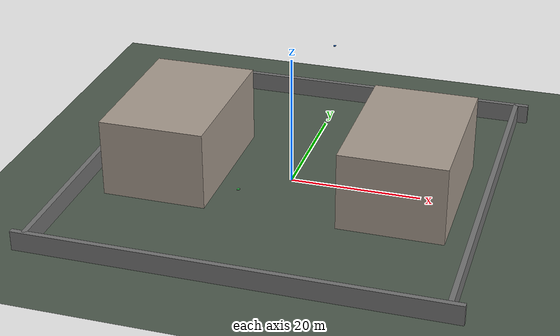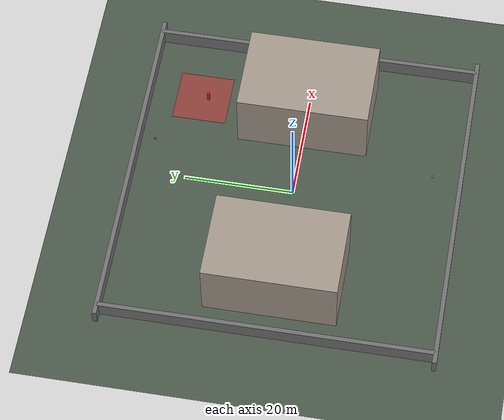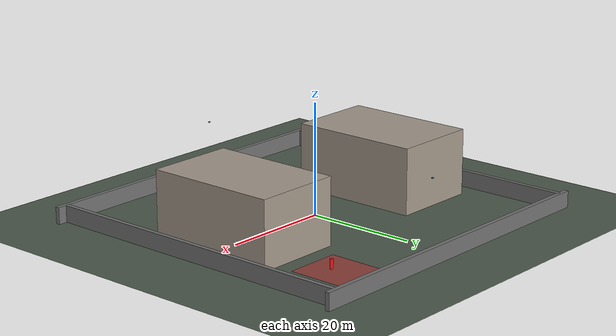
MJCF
<mujoco model="campus_perimeter_patrol">
  <compiler angle="radian" coordinate="local"/>
  <option gravity="0 0 -9.81" timestep="0.004" solver="Newton" iterations="40"/>

  <default>
    <geom condim="3" friction="1.0 0.01 0.005"/>
    <motor ctrllimited="true" ctrlrange="0 7.5"/>
  </default>

  <worldbody>
    <!-- Campus Ground Plane -->
    <geom name="ground" type="plane" size="45 45 0.1" rgba="0.3 0.35 0.3 1"/>
    <light directional="true" pos="0 0 30" dir="0 0 -1" castshadow="false"/>

    <!-- Campus Academic Buildings / Obstacles -->
    <geom name="building_east" type="box" size="8 12 6" pos="18 0 6" rgba="0.65 0.6 0.55 1"/>
    <geom name="building_west" type="box" size="8 12 6" pos="-18 0 6" rgba="0.65 0.6 0.55 1"/>

    <!-- Perimeter Boundary Walls -->
    <geom name="wall_north" type="box" size="32 0.4 1.5" pos="0 30 1.5" rgba="0.45 0.45 0.45 1"/>
    <geom name="wall_south" type="box" size="32 0.4 1.5" pos="0 -30 1.5" rgba="0.45 0.45 0.45 1"/>
    <geom name="wall_east"  type="box" size="0.4 30 1.5" pos="30 0 1.5" rgba="0.45 0.45 0.45 1"/>
    <geom name="wall_west"  type="box" size="0.4 30 1.5" pos="-30 0 1.5" rgba="0.45 0.45 0.45 1"/>

    <!-- Restricted Zone Marker (Electrical Substation) -->
    <geom name="substation_zone" type="box" size="5 5 0.02" pos="18 20 0.02" rgba="0.85 0.2 0.2 0.5"/>

    <!-- Simulated Human Intruder Avatar -->
    <body name="human_intruder" pos="18 19 0.85">
      <freejoint name="intruder_root"/>
      <geom name="intruder_geom" type="cylinder" size="0.28 0.85" rgba="0.9 0.1 0.1 1" mass="75.0"/>
      <site name="intruder_head" pos="0 0 0.85"/>
    </body>

    <!-- UAV ALPHA (Patrol Sector Alpha: North-East Perimeter)               -->
    <body name="uav_alpha" pos="0 25 12">
      <freejoint name="uav_alpha_root"/>
      <geom name="alpha_chassis" type="box" size="0.18 0.18 0.05" rgba="0.15 0.45 0.85 1" mass="1.35"/>
      <site name="alpha_imu" pos="0 0 0"/>
      <!-- Downward Surveillance Camera -->
      <camera name="cam_alpha" pos="0 0 -0.06" euler="3.1415 0 0" fovy="60"/>

      <!-- 4 Rotors for Quadrotor Dynamics -->
      <site name="alpha_rotor0" pos="0.20 0 0.02"/>
      <site name="alpha_rotor1" pos="-0.20 0 0.02"/>
      <site name="alpha_rotor2" pos="0 0.20 0.02"/>
      <site name="alpha_rotor3" pos="0 -0.20 0.02"/>
    </body>

    <!-- UAV BRAVO (Patrol Sector Bravo: South-West Perimeter)               -->
    <body name="uav_bravo" pos="0 -25 12">
      <freejoint name="uav_bravo_root"/>
      <geom name="bravo_chassis" type="box" size="0.18 0.18 0.05" rgba="0.2 0.7 0.3 1" mass="1.35"/>
      <site name="bravo_imu" pos="0 0 0"/>
      <!-- Downward Surveillance Camera -->
      <camera name="cam_bravo" pos="0 0 -0.06" euler="3.1415 0 0" fovy="60"/>

      <!-- 4 Rotors for Quadrotor Dynamics -->
      <site name="bravo_rotor0" pos="0.20 0 0.02"/>
      <site name="bravo_rotor1" pos="-0.20 0 0.02"/>
      <site name="bravo_rotor2" pos="0 0.20 0.02"/>
      <site name="bravo_rotor3" pos="0 -0.20 0.02"/>
    </body>
  </worldbody>

  <actuator>
    <!-- UAV Alpha Rotors (Thrust 0 to 7.5 N each) -->
    <motor name="alpha_m0" site="alpha_rotor0" gear="0 0 1 0 0 0"/>
    <motor name="alpha_m1" site="alpha_rotor1" gear="0 0 1 0 0 0"/>
    <motor name="alpha_m2" site="alpha_rotor2" gear="0 0 1 0 0 0"/>
    <motor name="alpha_m3" site="alpha_rotor3" gear="0 0 1 0 0 0"/>

    <!-- UAV Bravo Rotors -->
    <motor name="bravo_m0" site="bravo_rotor0" gear="0 0 1 0 0 0"/>
    <motor name="bravo_m1" site="bravo_rotor1" gear="0 0 1 0 0 0"/>
    <motor name="bravo_m2" site="bravo_rotor2" gear="0 0 1 0 0 0"/>
    <motor name="bravo_m3" site="bravo_rotor3" gear="0 0 1 0 0 0"/>
  </actuator>

  <sensor>
    <accelerometer name="alpha_accel" site="alpha_imu"/>
    <gyro name="alpha_gyro" site="alpha_imu"/>
    <accelerometer name="bravo_accel" site="bravo_imu"/>
    <gyro name="bravo_gyro" site="bravo_imu"/>
  </sensor>
</mujoco>
